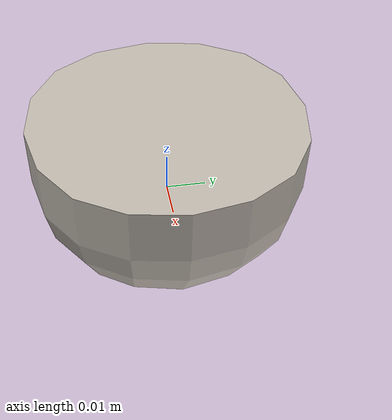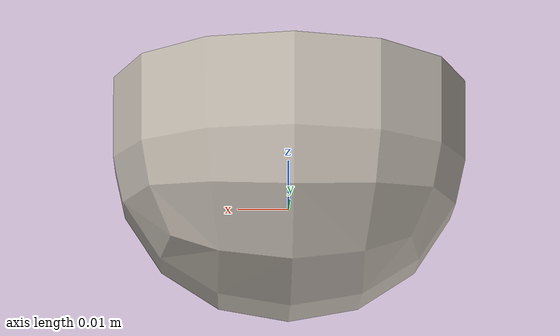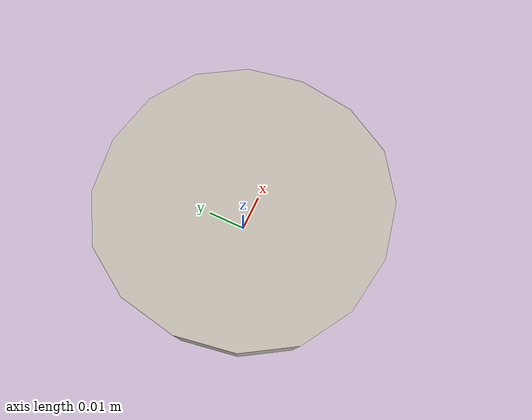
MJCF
<mujoco model="kiwi_1">
  <asset>
    <mesh file="visual/model_normalized_0.obj" name="kiwi_1_model_normalized_0_vis" scale="0.06999999999999999 0.06999999999999999 0.06999999999999999" refquat="-1.0 0.0 -2.220446049250313e-16 0.0" />
    <mesh file="collision/model_normalized_collision_22.obj" name="kiwi_1_model_normalized_collision_22._coll" scale="0.06999999999999999 0.06999999999999999 0.06999999999999999" refquat="-1.0 0.0 -2.220446049250313e-16 0.0" />
    <mesh file="collision/model_normalized_collision_23.obj" name="kiwi_1_model_normalized_collision_23._coll" scale="0.06999999999999999 0.06999999999999999 0.06999999999999999" refquat="-1.0 0.0 -2.220446049250313e-16 0.0" />
    <mesh file="collision/model_normalized_collision_21.obj" name="kiwi_1_model_normalized_collision_21._coll" scale="0.06999999999999999 0.06999999999999999 0.06999999999999999" refquat="-1.0 0.0 -2.220446049250313e-16 0.0" />
    <mesh file="collision/model_normalized_collision_20.obj" name="kiwi_1_model_normalized_collision_20._coll" scale="0.06999999999999999 0.06999999999999999 0.06999999999999999" refquat="-1.0 0.0 -2.220446049250313e-16 0.0" />
    <mesh file="collision/model_normalized_collision_24.obj" name="kiwi_1_model_normalized_collision_24._coll" scale="0.06999999999999999 0.06999999999999999 0.06999999999999999" refquat="-1.0 0.0 -2.220446049250313e-16 0.0" />
    <mesh file="collision/model_normalized_collision_30.obj" name="kiwi_1_model_normalized_collision_30._coll" scale="0.06999999999999999 0.06999999999999999 0.06999999999999999" refquat="-1.0 0.0 -2.220446049250313e-16 0.0" />
    <mesh file="collision/model_normalized_collision_18.obj" name="kiwi_1_model_normalized_collision_18._coll" scale="0.06999999999999999 0.06999999999999999 0.06999999999999999" refquat="-1.0 0.0 -2.220446049250313e-16 0.0" />
    <mesh file="collision/model_normalized_collision_19.obj" name="kiwi_1_model_normalized_collision_19._coll" scale="0.06999999999999999 0.06999999999999999 0.06999999999999999" refquat="-1.0 0.0 -2.220446049250313e-16 0.0" />
    <mesh file="collision/model_normalized_collision_31.obj" name="kiwi_1_model_normalized_collision_31._coll" scale="0.06999999999999999 0.06999999999999999 0.06999999999999999" refquat="-1.0 0.0 -2.220446049250313e-16 0.0" />
    <mesh file="collision/model_normalized_collision_25.obj" name="kiwi_1_model_normalized_collision_25._coll" scale="0.06999999999999999 0.06999999999999999 0.06999999999999999" refquat="-1.0 0.0 -2.220446049250313e-16 0.0" />
    <mesh file="collision/model_normalized_collision_27.obj" name="kiwi_1_model_normalized_collision_27._coll" scale="0.06999999999999999 0.06999999999999999 0.06999999999999999" refquat="-1.0 0.0 -2.220446049250313e-16 0.0" />
    <mesh file="collision/model_normalized_collision_26.obj" name="kiwi_1_model_normalized_collision_26._coll" scale="0.06999999999999999 0.06999999999999999 0.06999999999999999" refquat="-1.0 0.0 -2.220446049250313e-16 0.0" />
    <mesh file="collision/model_normalized_collision_9.obj" name="kiwi_1_model_normalized_collision_9._coll" scale="0.06999999999999999 0.06999999999999999 0.06999999999999999" refquat="-1.0 0.0 -2.220446049250313e-16 0.0" />
    <mesh file="collision/model_normalized_collision_8.obj" name="kiwi_1_model_normalized_collision_8._coll" scale="0.06999999999999999 0.06999999999999999 0.06999999999999999" refquat="-1.0 0.0 -2.220446049250313e-16 0.0" />
    <mesh file="collision/model_normalized_collision_6.obj" name="kiwi_1_model_normalized_collision_6._coll" scale="0.06999999999999999 0.06999999999999999 0.06999999999999999" refquat="-1.0 0.0 -2.220446049250313e-16 0.0" />
    <mesh file="collision/model_normalized_collision_7.obj" name="kiwi_1_model_normalized_collision_7._coll" scale="0.06999999999999999 0.06999999999999999 0.06999999999999999" refquat="-1.0 0.0 -2.220446049250313e-16 0.0" />
    <mesh file="collision/model_normalized_collision_5.obj" name="kiwi_1_model_normalized_collision_5._coll" scale="0.06999999999999999 0.06999999999999999 0.06999999999999999" refquat="-1.0 0.0 -2.220446049250313e-16 0.0" />
    <mesh file="collision/model_normalized_collision_4.obj" name="kiwi_1_model_normalized_collision_4._coll" scale="0.06999999999999999 0.06999999999999999 0.06999999999999999" refquat="-1.0 0.0 -2.220446049250313e-16 0.0" />
    <mesh file="collision/model_normalized_collision_0.obj" name="kiwi_1_model_normalized_collision_0._coll" scale="0.06999999999999999 0.06999999999999999 0.06999999999999999" refquat="-1.0 0.0 -2.220446049250313e-16 0.0" />
    <mesh file="collision/model_normalized_collision_1.obj" name="kiwi_1_model_normalized_collision_1._coll" scale="0.06999999999999999 0.06999999999999999 0.06999999999999999" refquat="-1.0 0.0 -2.220446049250313e-16 0.0" />
    <mesh file="collision/model_normalized_collision_3.obj" name="kiwi_1_model_normalized_collision_3._coll" scale="0.06999999999999999 0.06999999999999999 0.06999999999999999" refquat="-1.0 0.0 -2.220446049250313e-16 0.0" />
    <mesh file="collision/model_normalized_collision_2.obj" name="kiwi_1_model_normalized_collision_2._coll" scale="0.06999999999999999 0.06999999999999999 0.06999999999999999" refquat="-1.0 0.0 -2.220446049250313e-16 0.0" />
    <mesh file="collision/model_normalized_collision_17.obj" name="kiwi_1_model_normalized_collision_17._coll" scale="0.06999999999999999 0.06999999999999999 0.06999999999999999" refquat="-1.0 0.0 -2.220446049250313e-16 0.0" />
    <mesh file="collision/model_normalized_collision_16.obj" name="kiwi_1_model_normalized_collision_16._coll" scale="0.06999999999999999 0.06999999999999999 0.06999999999999999" refquat="-1.0 0.0 -2.220446049250313e-16 0.0" />
    <mesh file="collision/model_normalized_collision_28.obj" name="kiwi_1_model_normalized_collision_28._coll" scale="0.06999999999999999 0.06999999999999999 0.06999999999999999" refquat="-1.0 0.0 -2.220446049250313e-16 0.0" />
    <mesh file="collision/model_normalized_collision_14.obj" name="kiwi_1_model_normalized_collision_14._coll" scale="0.06999999999999999 0.06999999999999999 0.06999999999999999" refquat="-1.0 0.0 -2.220446049250313e-16 0.0" />
    <mesh file="collision/model_normalized_collision_15.obj" name="kiwi_1_model_normalized_collision_15._coll" scale="0.06999999999999999 0.06999999999999999 0.06999999999999999" refquat="-1.0 0.0 -2.220446049250313e-16 0.0" />
    <mesh file="collision/model_normalized_collision_29.obj" name="kiwi_1_model_normalized_collision_29._coll" scale="0.06999999999999999 0.06999999999999999 0.06999999999999999" refquat="-1.0 0.0 -2.220446049250313e-16 0.0" />
    <mesh file="collision/model_normalized_collision_11.obj" name="kiwi_1_model_normalized_collision_11._coll" scale="0.06999999999999999 0.06999999999999999 0.06999999999999999" refquat="-1.0 0.0 -2.220446049250313e-16 0.0" />
    <mesh file="collision/model_normalized_collision_10.obj" name="kiwi_1_model_normalized_collision_10._coll" scale="0.06999999999999999 0.06999999999999999 0.06999999999999999" refquat="-1.0 0.0 -2.220446049250313e-16 0.0" />
    <mesh file="collision/model_normalized_collision_12.obj" name="kiwi_1_model_normalized_collision_12._coll" scale="0.06999999999999999 0.06999999999999999 0.06999999999999999" refquat="-1.0 0.0 -2.220446049250313e-16 0.0" />
    <mesh file="collision/model_normalized_collision_13.obj" name="kiwi_1_model_normalized_collision_13._coll" scale="0.06999999999999999 0.06999999999999999 0.06999999999999999" refquat="-1.0 0.0 -2.220446049250313e-16 0.0" />
    <texture type="2d" name="kiwi_1_image0" file="visual/image0.png" />
    <material name="kiwi_1_Material.352" texture="kiwi_1_image0" specular="0.5" shininess="0.359999993" />
  </asset>
  <worldbody>
    <body>
      <joint name="kiwi_1_object_joint" type="free" damping="1." /><body name="kiwi_1_object">
        <geom solimp="0.998 0.998 0.001" solref="0.001 1" density="300" friction="0.95 0.3 0.1" type="mesh" mesh="kiwi_1_model_normalized_0_vis" conaffinity="0" contype="0" group="1" material="kiwi_1_Material.352" />
        <geom solimp="0.998 0.998 0.001" solref="0.001 1" density="300" friction="0.95 0.3 0.1" type="mesh" mesh="kiwi_1_model_normalized_collision_22._coll" group="0" rgba="0.8 0.8 0.8 0.0" />
        <geom solimp="0.998 0.998 0.001" solref="0.001 1" density="300" friction="0.95 0.3 0.1" type="mesh" mesh="kiwi_1_model_normalized_collision_23._coll" group="0" rgba="0.8 0.8 0.8 0.0" />
        <geom solimp="0.998 0.998 0.001" solref="0.001 1" density="300" friction="0.95 0.3 0.1" type="mesh" mesh="kiwi_1_model_normalized_collision_21._coll" group="0" rgba="0.8 0.8 0.8 0.0" />
        <geom solimp="0.998 0.998 0.001" solref="0.001 1" density="300" friction="0.95 0.3 0.1" type="mesh" mesh="kiwi_1_model_normalized_collision_20._coll" group="0" rgba="0.8 0.8 0.8 0.0" />
        <geom solimp="0.998 0.998 0.001" solref="0.001 1" density="300" friction="0.95 0.3 0.1" type="mesh" mesh="kiwi_1_model_normalized_collision_24._coll" group="0" rgba="0.8 0.8 0.8 0.0" />
        <geom solimp="0.998 0.998 0.001" solref="0.001 1" density="300" friction="0.95 0.3 0.1" type="mesh" mesh="kiwi_1_model_normalized_collision_30._coll" group="0" rgba="0.8 0.8 0.8 0.0" />
        <geom solimp="0.998 0.998 0.001" solref="0.001 1" density="300" friction="0.95 0.3 0.1" type="mesh" mesh="kiwi_1_model_normalized_collision_18._coll" group="0" rgba="0.8 0.8 0.8 0.0" />
        <geom solimp="0.998 0.998 0.001" solref="0.001 1" density="300" friction="0.95 0.3 0.1" type="mesh" mesh="kiwi_1_model_normalized_collision_19._coll" group="0" rgba="0.8 0.8 0.8 0.0" />
        <geom solimp="0.998 0.998 0.001" solref="0.001 1" density="300" friction="0.95 0.3 0.1" type="mesh" mesh="kiwi_1_model_normalized_collision_31._coll" group="0" rgba="0.8 0.8 0.8 0.0" />
        <geom solimp="0.998 0.998 0.001" solref="0.001 1" density="300" friction="0.95 0.3 0.1" type="mesh" mesh="kiwi_1_model_normalized_collision_25._coll" group="0" rgba="0.8 0.8 0.8 0.0" />
        <geom solimp="0.998 0.998 0.001" solref="0.001 1" density="300" friction="0.95 0.3 0.1" type="mesh" mesh="kiwi_1_model_normalized_collision_27._coll" group="0" rgba="0.8 0.8 0.8 0.0" />
        <geom solimp="0.998 0.998 0.001" solref="0.001 1" density="300" friction="0.95 0.3 0.1" type="mesh" mesh="kiwi_1_model_normalized_collision_26._coll" group="0" rgba="0.8 0.8 0.8 0.0" />
        <geom solimp="0.998 0.998 0.001" solref="0.001 1" density="300" friction="0.95 0.3 0.1" type="mesh" mesh="kiwi_1_model_normalized_collision_9._coll" group="0" rgba="0.8 0.8 0.8 0.0" />
        <geom solimp="0.998 0.998 0.001" solref="0.001 1" density="300" friction="0.95 0.3 0.1" type="mesh" mesh="kiwi_1_model_normalized_collision_8._coll" group="0" rgba="0.8 0.8 0.8 0.0" />
        <geom solimp="0.998 0.998 0.001" solref="0.001 1" density="300" friction="0.95 0.3 0.1" type="mesh" mesh="kiwi_1_model_normalized_collision_6._coll" group="0" rgba="0.8 0.8 0.8 0.0" />
        <geom solimp="0.998 0.998 0.001" solref="0.001 1" density="300" friction="0.95 0.3 0.1" type="mesh" mesh="kiwi_1_model_normalized_collision_7._coll" group="0" rgba="0.8 0.8 0.8 0.0" />
        <geom solimp="0.998 0.998 0.001" solref="0.001 1" density="300" friction="0.95 0.3 0.1" type="mesh" mesh="kiwi_1_model_normalized_collision_5._coll" group="0" rgba="0.8 0.8 0.8 0.0" />
        <geom solimp="0.998 0.998 0.001" solref="0.001 1" density="300" friction="0.95 0.3 0.1" type="mesh" mesh="kiwi_1_model_normalized_collision_4._coll" group="0" rgba="0.8 0.8 0.8 0.0" />
        <geom solimp="0.998 0.998 0.001" solref="0.001 1" density="300" friction="0.95 0.3 0.1" type="mesh" mesh="kiwi_1_model_normalized_collision_0._coll" group="0" rgba="0.8 0.8 0.8 0.0" />
        <geom solimp="0.998 0.998 0.001" solref="0.001 1" density="300" friction="0.95 0.3 0.1" type="mesh" mesh="kiwi_1_model_normalized_collision_1._coll" group="0" rgba="0.8 0.8 0.8 0.0" />
        <geom solimp="0.998 0.998 0.001" solref="0.001 1" density="300" friction="0.95 0.3 0.1" type="mesh" mesh="kiwi_1_model_normalized_collision_3._coll" group="0" rgba="0.8 0.8 0.8 0.0" />
        <geom solimp="0.998 0.998 0.001" solref="0.001 1" density="300" friction="0.95 0.3 0.1" type="mesh" mesh="kiwi_1_model_normalized_collision_2._coll" group="0" rgba="0.8 0.8 0.8 0.0" />
        <geom solimp="0.998 0.998 0.001" solref="0.001 1" density="300" friction="0.95 0.3 0.1" type="mesh" mesh="kiwi_1_model_normalized_collision_17._coll" group="0" rgba="0.8 0.8 0.8 0.0" />
        <geom solimp="0.998 0.998 0.001" solref="0.001 1" density="300" friction="0.95 0.3 0.1" type="mesh" mesh="kiwi_1_model_normalized_collision_16._coll" group="0" rgba="0.8 0.8 0.8 0.0" />
        <geom solimp="0.998 0.998 0.001" solref="0.001 1" density="300" friction="0.95 0.3 0.1" type="mesh" mesh="kiwi_1_model_normalized_collision_28._coll" group="0" rgba="0.8 0.8 0.8 0.0" />
        <geom solimp="0.998 0.998 0.001" solref="0.001 1" density="300" friction="0.95 0.3 0.1" type="mesh" mesh="kiwi_1_model_normalized_collision_14._coll" group="0" rgba="0.8 0.8 0.8 0.0" />
        <geom solimp="0.998 0.998 0.001" solref="0.001 1" density="300" friction="0.95 0.3 0.1" type="mesh" mesh="kiwi_1_model_normalized_collision_15._coll" group="0" rgba="0.8 0.8 0.8 0.0" />
        <geom solimp="0.998 0.998 0.001" solref="0.001 1" density="300" friction="0.95 0.3 0.1" type="mesh" mesh="kiwi_1_model_normalized_collision_29._coll" group="0" rgba="0.8 0.8 0.8 0.0" />
        <geom solimp="0.998 0.998 0.001" solref="0.001 1" density="300" friction="0.95 0.3 0.1" type="mesh" mesh="kiwi_1_model_normalized_collision_11._coll" group="0" rgba="0.8 0.8 0.8 0.0" />
        <geom solimp="0.998 0.998 0.001" solref="0.001 1" density="300" friction="0.95 0.3 0.1" type="mesh" mesh="kiwi_1_model_normalized_collision_10._coll" group="0" rgba="0.8 0.8 0.8 0.0" />
        <geom solimp="0.998 0.998 0.001" solref="0.001 1" density="300" friction="0.95 0.3 0.1" type="mesh" mesh="kiwi_1_model_normalized_collision_12._coll" group="0" rgba="0.8 0.8 0.8 0.0" />
        <geom solimp="0.998 0.998 0.001" solref="0.001 1" density="300" friction="0.95 0.3 0.1" type="mesh" mesh="kiwi_1_model_normalized_collision_13._coll" group="0" rgba="0.8 0.8 0.8 0.0" />
      </body>

    </body>
  </worldbody>
</mujoco>
